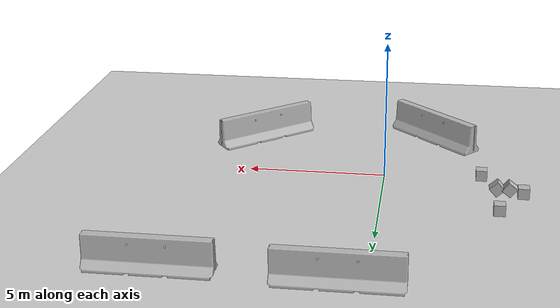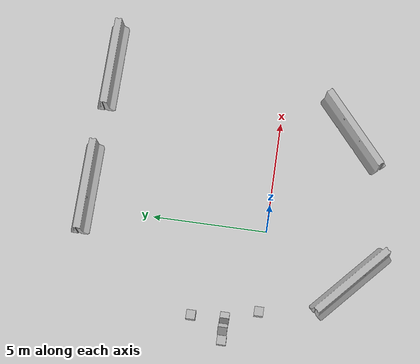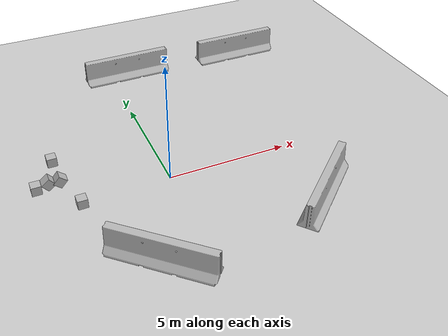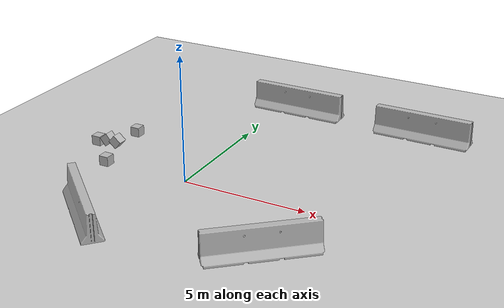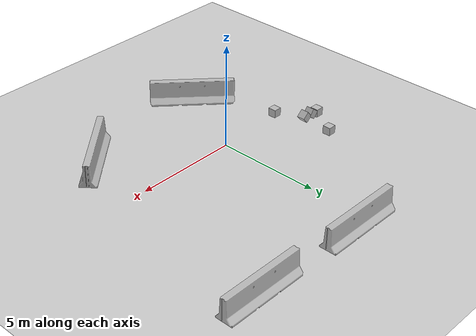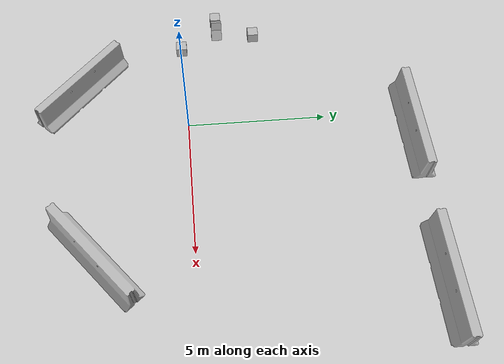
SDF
<sdf version="1.6">
 <world name="default">
  <light name="sun" type="directional">
   <pose>0 0 10 0 -0 0</pose>
   <diffuse>0.8 0.8 0.8 1</diffuse>
   <specular>0.1 0.1 0.1 1</specular>
   <attenuation>
    <range>1000</range>
    <constant>0.9</constant>
    <linear>0.01</linear>
    <quadratic>0.001</quadratic>
   </attenuation>
   <direction>-0.5 0.5 -1</direction>
  </light>
  <model name="ground_plane">
   <static>1</static>
   <link name="link">
    <collision name="collision">
     <geometry><plane><normal>0 0 1</normal><size>100 100</size></plane></geometry>
     <surface><friction><ode><mu>100</mu><mu2>50</mu2></ode></friction></surface>
    </collision>
    <visual name="visual">
     <cast_shadows>0</cast_shadows>
     <geometry><plane><normal>0 0 1</normal><size>100 100</size></plane></geometry>
     <material>
      <script><uri>file://media/materials/scripts/gazebo.material</uri><name>Gazebo/Grey</name></script>
     </material>
    </visual>
   </link>
  </model>
  <gravity>0 0 -9.8</gravity>
  <magnetic_field>6e-06 2.3e-05 -4.2e-05</magnetic_field>
  <atmosphere type="adiabatic"/>
  <physics name="default_physics" default="0" type="ode">
   <max_step_size>0.001</max_step_size>
   <real_time_factor>1</real_time_factor>
   <real_time_update_rate>1000</real_time_update_rate>
  </physics>
  <scene><ambient>0.4 0.4 0.4 1</ambient><background>0.7 0.7 0.7 1</background><shadows>1</shadows></scene>
  <spherical_coordinates>
   <surface_model>EARTH_WGS84</surface_model>
   <latitude_deg>0</latitude_deg>
   <longitude_deg>0</longitude_deg>
   <elevation>0</elevation>
   <heading_deg>0</heading_deg>
  </spherical_coordinates>
  <model name="jersey_barrier">
   <static>1</static>
   <link name="link">
    <visual name="visual">
     <geometry>
      <mesh><uri>model://jersey_barrier/meshes/jersey_barrier.dae</uri><scale>1 1 1</scale></mesh>
     </geometry>
    </visual>
    <collision name="upright">
     <pose>0 0 0.5715 0 -0 0</pose>
     <geometry><box><size>4.06542 0.3063 1.143</size></box></geometry>
    </collision>
    <collision name="base">
     <pose>0 0 0.032258 0 -0 0</pose>
     <geometry><box><size>4.06542 0.8107 0.064516</size></box></geometry>
    </collision>
    <collision name="base2">
     <pose>0 0 0.1 0 -0 0</pose>
     <geometry><box><size>4.06542 0.65 0.1</size></box></geometry>
    </collision>
    <collision name="base3">
     <pose>0 0 0.2 0 -0 0</pose>
     <geometry><box><size>4.06542 0.5 0.1</size></box></geometry>
    </collision>
    <collision name="left-angle">
     <pose>0 -0.224 0.2401 0.9 -0 0</pose>
     <geometry><box><size>4.06542 0.5 0.064516</size></box></geometry>
    </collision>
    <collision name="right-angle">
     <pose>0 0.224 0.2401 -0.9 0 0</pose>
     <geometry><box><size>4.06542 0.5 0.064516</size></box></geometry>
    </collision>
   </link>
   <pose>-1.76337 -3.87008 0 0 0 -0.741185</pose>
  </model>
  <model name="jersey_barrier_0">
   <static>1</static>
   <link name="link">
    <visual name="visual">
     <geometry>
      <mesh><uri>model://jersey_barrier/meshes/jersey_barrier.dae</uri><scale>1 1 1</scale></mesh>
     </geometry>
    </visual>
    <collision name="upright">
     <pose>0 0 0.5715 0 -0 0</pose>
     <geometry><box><size>4.06542 0.3063 1.143</size></box></geometry>
    </collision>
    <collision name="base">
     <pose>0 0 0.032258 0 -0 0</pose>
     <geometry><box><size>4.06542 0.8107 0.064516</size></box></geometry>
    </collision>
    <collision name="base2">
     <pose>0 0 0.1 0 -0 0</pose>
     <geometry><box><size>4.06542 0.65 0.1</size></box></geometry>
    </collision>
    <collision name="base3">
     <pose>0 0 0.2 0 -0 0</pose>
     <geometry><box><size>4.06542 0.5 0.1</size></box></geometry>
    </collision>
    <collision name="left-angle">
     <pose>0 -0.224 0.2401 0.9 -0 0</pose>
     <geometry><box><size>4.06542 0.5 0.064516</size></box></geometry>
    </collision>
    <collision name="right-angle">
     <pose>0 0.224 0.2401 -0.9 0 0</pose>
     <geometry><box><size>4.06542 0.5 0.064516</size></box></geometry>
    </collision>
   </link>
   <pose>4.98268 -3.23826 0 0 -0 0.704472</pose>
  </model>
  <model name="jersey_barrier_1">
   <static>1</static>
   <link name="link">
    <visual name="visual">
     <geometry>
      <mesh><uri>model://jersey_barrier/meshes/jersey_barrier.dae</uri><scale>1 1 1</scale></mesh>
     </geometry>
    </visual>
    <collision name="upright">
     <pose>0 0 0.5715 0 -0 0</pose>
     <geometry><box><size>4.06542 0.3063 1.143</size></box></geometry>
    </collision>
    <collision name="base">
     <pose>0 0 0.032258 0 -0 0</pose>
     <geometry><box><size>4.06542 0.8107 0.064516</size></box></geometry>
    </collision>
    <collision name="base2">
     <pose>0 0 0.1 0 -0 0</pose>
     <geometry><box><size>4.06542 0.65 0.1</size></box></geometry>
    </collision>
    <collision name="base3">
     <pose>0 0 0.2 0 -0 0</pose>
     <geometry><box><size>4.06542 0.5 0.1</size></box></geometry>
    </collision>
    <collision name="left-angle">
     <pose>0 -0.224 0.2401 0.9 -0 0</pose>
     <geometry><box><size>4.06542 0.5 0.064516</size></box></geometry>
    </collision>
    <collision name="right-angle">
     <pose>0 0.224 0.2401 -0.9 0 0</pose>
     <geometry><box><size>4.06542 0.5 0.064516</size></box></geometry>
    </collision>
   </link>
   <pose>6.58292 7.87882 0 0 -0 0</pose>
  </model>
  <model name="jersey_barrier_2">
   <static>1</static>
   <link name="link">
    <visual name="visual">
     <geometry>
      <mesh><uri>model://jersey_barrier/meshes/jersey_barrier.dae</uri><scale>1 1 1</scale></mesh>
     </geometry>
    </visual>
    <collision name="upright">
     <pose>0 0 0.5715 0 -0 0</pose>
     <geometry><box><size>4.06542 0.3063 1.143</size></box></geometry>
    </collision>
    <collision name="base">
     <pose>0 0 0.032258 0 -0 0</pose>
     <geometry><box><size>4.06542 0.8107 0.064516</size></box></geometry>
    </collision>
    <collision name="base2">
     <pose>0 0 0.1 0 -0 0</pose>
     <geometry><box><size>4.06542 0.65 0.1</size></box></geometry>
    </collision>
    <collision name="base3">
     <pose>0 0 0.2 0 -0 0</pose>
     <geometry><box><size>4.06542 0.5 0.1</size></box></geometry>
    </collision>
    <collision name="left-angle">
     <pose>0 -0.224 0.2401 0.9 -0 0</pose>
     <geometry><box><size>4.06542 0.5 0.064516</size></box></geometry>
    </collision>
    <collision name="right-angle">
     <pose>0 0.224 0.2401 -0.9 0 0</pose>
     <geometry><box><size>4.06542 0.5 0.064516</size></box></geometry>
    </collision>
   </link>
   <pose>0.841401 8.04956 0 0 -0 0</pose>
  </model>
  <model name="cardboard_box">
   <pose>-4.05281 2.71607 0.149 0 -0 0</pose>
   <link name="link">
    <inertial>
     <mass>2</mass>
     <inertia>
      <ixx>0.0416667</ixx>
      <ixy>0</ixy>
      <ixz>0</ixz>
      <iyy>0.0566667</iyy>
      <iyz>0</iyz>
      <izz>0.0683333</izz>
     </inertia>
    </inertial>
    <collision name="collision">
     <geometry><box><size>0.5 0.4 0.3</size></box></geometry>
     <surface>
      <friction><ode><mu>1</mu><mu2>1</mu2></ode></friction>
      <contact><ode><kp>1e+07</kp><kd>1</kd><min_depth>0.001</min_depth><max_vel>0.1</max_vel></ode></contact>
     </surface>
    </collision>
    <visual name="visual">
     <pose>0 0 -0.15 0 -0 0</pose>
     <geometry>
      <mesh><uri>model://cardboard_box/meshes/cardboard_box.dae</uri><scale>1 1 1</scale></mesh>
     </geometry>
    </visual>
   </link>
  </model>
  <model name="cardboard_box_0">
   <pose>-4.94405 1.27378 0.149 0 -0 0</pose>
   <link name="link">
    <inertial>
     <mass>2</mass>
     <inertia>
      <ixx>0.0416667</ixx>
      <ixy>0</ixy>
      <ixz>0</ixz>
      <iyy>0.0566667</iyy>
      <iyz>0</iyz>
      <izz>0.0683333</izz>
     </inertia>
    </inertial>
    <collision name="collision">
     <geometry><box><size>0.5 0.4 0.3</size></box></geometry>
     <surface>
      <friction><ode><mu>1</mu><mu2>1</mu2></ode></friction>
      <contact><ode><kp>1e+07</kp><kd>1</kd><min_depth>0.001</min_depth><max_vel>0.1</max_vel></ode></contact>
     </surface>
    </collision>
    <visual name="visual">
     <pose>0 0 -0.15 0 -0 0</pose>
     <geometry>
      <mesh><uri>model://cardboard_box/meshes/cardboard_box.dae</uri><scale>1 1 1</scale></mesh>
     </geometry>
    </visual>
   </link>
  </model>
  <model name="cardboard_box_1">
   <pose>-4.49662 1.29288 0.288346 0 0.907451 1e-06</pose>
   <link name="link">
    <inertial>
     <mass>2</mass>
     <inertia>
      <ixx>0.0416667</ixx>
      <ixy>0</ixy>
      <ixz>0</ixz>
      <iyy>0.0566667</iyy>
      <iyz>0</iyz>
      <izz>0.0683333</izz>
     </inertia>
    </inertial>
    <collision name="collision">
     <geometry><box><size>0.5 0.4 0.3</size></box></geometry>
     <surface>
      <friction><ode><mu>1</mu><mu2>1</mu2></ode></friction>
      <contact><ode><kp>1e+07</kp><kd>1</kd><min_depth>0.001</min_depth><max_vel>0.1</max_vel></ode></contact>
     </surface>
    </collision>
    <visual name="visual">
     <pose>0 0 -0.15 0 -0 0</pose>
     <geometry>
      <mesh><uri>model://cardboard_box/meshes/cardboard_box.dae</uri><scale>1 1 1</scale></mesh>
     </geometry>
    </visual>
   </link>
  </model>
  <model name="cardboard_box_2">
   <pose>-4.05392 1.27926 0.277222 0 0.72688 -3e-06</pose>
   <link name="link">
    <inertial>
     <mass>2</mass>
     <inertia>
      <ixx>0.0416667</ixx>
      <ixy>0</ixy>
      <ixz>0</ixz>
      <iyy>0.0566667</iyy>
      <iyz>0</iyz>
      <izz>0.0683333</izz>
     </inertia>
    </inertial>
    <collision name="collision">
     <geometry><box><size>0.5 0.4 0.3</size></box></geometry>
     <surface>
      <friction><ode><mu>1</mu><mu2>1</mu2></ode></friction>
      <contact><ode><kp>1e+07</kp><kd>1</kd><min_depth>0.001</min_depth><max_vel>0.1</max_vel></ode></contact>
     </surface>
    </collision>
    <visual name="visual">
     <pose>0 0 -0.15 0 -0 0</pose>
     <geometry>
      <mesh><uri>model://cardboard_box/meshes/cardboard_box.dae</uri><scale>1 1 1</scale></mesh>
     </geometry>
    </visual>
   </link>
  </model>
  <model name="cardboard_box_3">
   <pose>-3.5228 -0.125988 0.149 0 -0 0</pose>
   <link name="link">
    <inertial>
     <mass>2</mass>
     <inertia>
      <ixx>0.0416667</ixx>
      <ixy>0</ixy>
      <ixz>0</ixz>
      <iyy>0.0566667</iyy>
      <iyz>0</iyz>
      <izz>0.0683333</izz>
     </inertia>
    </inertial>
    <collision name="collision">
     <geometry><box><size>0.5 0.4 0.3</size></box></geometry>
     <surface>
      <friction><ode><mu>1</mu><mu2>1</mu2></ode></friction>
      <contact><ode><kp>1e+07</kp><kd>1</kd><min_depth>0.001</min_depth><max_vel>0.1</max_vel></ode></contact>
     </surface>
    </collision>
    <visual name="visual">
     <pose>0 0 -0.15 0 -0 0</pose>
     <geometry>
      <mesh><uri>model://cardboard_box/meshes/cardboard_box.dae</uri><scale>1 1 1</scale></mesh>
     </geometry>
    </visual>
   </link>
  </model>
 </world>
</sdf>
